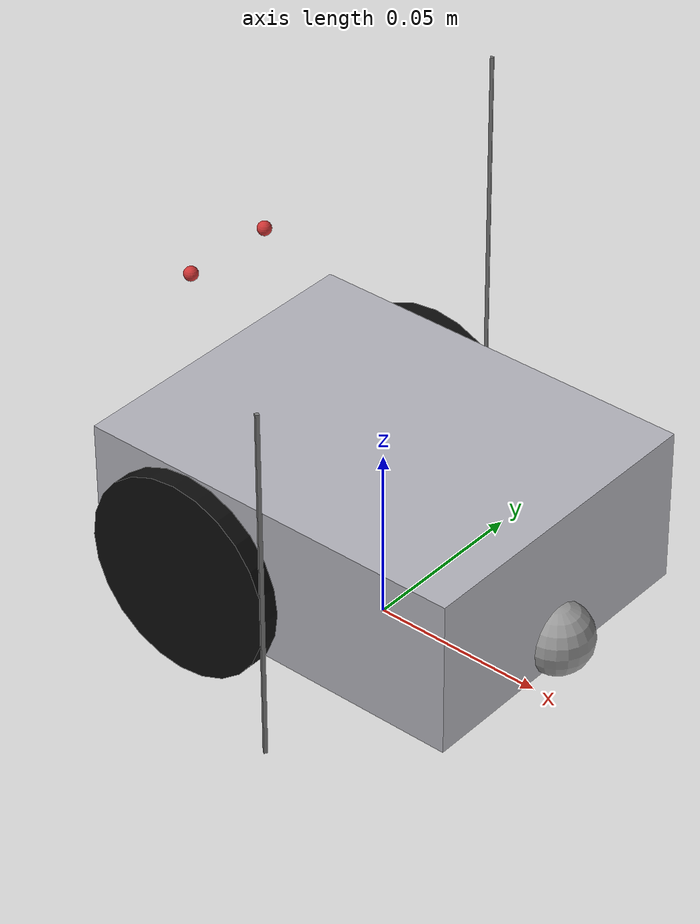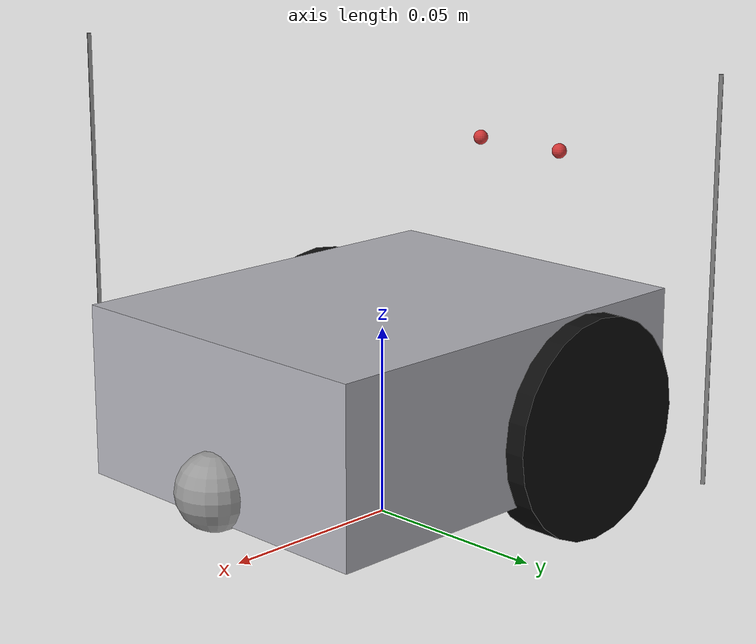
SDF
<?xml version="1.0"?>
<sdf version="1.6">
  <model name="breadboard_hobby_robot">

    <link name="base_link">
      <pose>0 0 0.036 0 0 0</pose>

      <inertial>
        <mass>0.350</mass>
        <inertia>
          <ixx>0.000393</ixx>  <!-- (1/12)*m*(y²+z²) -->
          <ixy>0</ixy>
          <ixz>0</ixz>
          <iyy>0.000519</iyy>
          <iyz>0</iyz>
          <izz>0.000744</izz>
        </inertia>
      </inertial>

      <collision name="chassis_collision">
        <geometry>
          <box>
            <size>0.115 0.092 0.045</size>
          </box>
        </geometry>
      </collision>

      <visual name="chassis_visual">
        <geometry>
          <box>
            <size>0.115 0.092 0.045</size>
          </box>
        </geometry>
        <material>
          <ambient>0.75 0.75 0.78 1</ambient>
          <diffuse>0.70 0.70 0.73 1</diffuse>
          <specular>0.4 0.4 0.4 1</specular>
        </material>
      </visual>

      <!-- Front caster sphere -->
      <collision name="caster_collision">
        <pose>0.057 0 -0.015 0 0 0</pose>
        <geometry>
          <sphere><radius>0.010</radius></sphere>
        </geometry>
        <surface>
          <friction>
            <ode><mu>0</mu><mu2>0</mu2></ode>
          </friction>
        </surface>
      </collision>
      <visual name="caster_visual">
        <pose>0.057 0 -0.015 0 0 0</pose>
        <geometry>
          <sphere><radius>0.010</radius></sphere>
        </geometry>
        <material>
          <ambient>0.6 0.6 0.6 1</ambient>
          <diffuse>0.6 0.6 0.6 1</diffuse>
        </material>
      </visual>

      <sensor name="rds" type="ray">
        <pose>0.028 -0.050 0.050 0 0 -1.170</pose>
        <ray>
          <scan><horizontal><samples>1</samples><min_angle>0</min_angle><max_angle>0</max_angle></horizontal></scan>
          <range><min>0.01</min><max>0.10</max><resolution>0.001</resolution></range>
        </ray>
        <always_on>1</always_on>
        <update_rate>10</update_rate>
      </sensor>

      <sensor name="lds" type="ray">
        <pose>-0.028 0.050 0.050 0 0 1.170</pose>
        <ray>
          <scan><horizontal><samples>1</samples><min_angle>0</min_angle><max_angle>0</max_angle></horizontal></scan>
          <range><min>0.01</min><max>0.10</max><resolution>0.001</resolution></range>
        </ray>
        <always_on>1</always_on>
        <update_rate>10</update_rate>
      </sensor>

      <sensor name="right_whisker" type="contact">
        <pose>0.030 -0.080 0.035 0 0 -0.534</pose>
        <contact>
          <collision>right_whisker_collision</collision>
        </contact>
        <always_on>1</always_on>
        <update_rate>20</update_rate>
      </sensor>

      <collision name="right_whisker_collision">
        <pose>0.030 -0.080 0.035 0 0 -0.534</pose>
        <geometry>
          <box><size>0.001 0.001 0.100</size></box>
        </geometry>
      </collision>
      <visual name="right_whisker_visual">
        <pose>0.030 -0.080 0.035 0 0 -0.534</pose>
        <geometry>
          <box><size>0.001 0.001 0.100</size></box>
        </geometry>
        <material>
          <ambient>0.5 0.5 0.5 1</ambient>
          <diffuse>0.5 0.5 0.5 1</diffuse>
        </material>
      </visual>

      <sensor name="left_whisker" type="contact">
        <pose>-0.030 0.080 0.035 0 0 0.534</pose>
        <contact>
          <collision>left_whisker_collision</collision>
        </contact>
        <always_on>1</always_on>
        <update_rate>20</update_rate>
      </sensor>

      <collision name="left_whisker_collision">
        <pose>-0.030 0.080 0.035 0 0 0.534</pose>
        <geometry>
          <box><size>0.001 0.001 0.100</size></box>
        </geometry>
      </collision>
      <visual name="left_whisker_visual">
        <pose>-0.030 0.080 0.035 0 0 0.534</pose>
        <geometry>
          <box><size>0.001 0.001 0.100</size></box>
        </geometry>
        <material>
          <ambient>0.5 0.5 0.5 1</ambient>
          <diffuse>0.5 0.5 0.5 1</diffuse>
        </material>
      </visual>

      <sensor name="rls" type="ray">
        <pose>-0.052 -0.021 0.052 0 0 0</pose>
        <ray>
          <scan><horizontal><samples>1</samples><min_angle>-0.087</min_angle><max_angle>0.087</max_angle></horizontal></scan>
          <range><min>0.01</min><max>2.0</max><resolution>0.01</resolution></range>
        </ray>
        <always_on>1</always_on>
        <update_rate>10</update_rate>
      </sensor>

      <sensor name="lls" type="ray">
        <pose>-0.052 0.021 0.052 0 0 0</pose>
        <ray>
          <scan><horizontal><samples>1</samples><min_angle>-0.087</min_angle><max_angle>0.087</max_angle></horizontal></scan>
          <range><min>0.01</min><max>2.0</max><resolution>0.01</resolution></range>
        </ray>
        <always_on>1</always_on>
        <update_rate>10</update_rate>
      </sensor>

      <!-- ─── LEDs (visual only in SDF; Gazebo light plugin optional) -->
      <visual name="right_led_visual">
        <pose>-0.052 -0.014 0.055 0 0 0</pose>
        <geometry><sphere><radius>0.002</radius></sphere></geometry>
        <material>
          <ambient>0.81 0.21 0.21 1</ambient>
          <diffuse>0.81 0.21 0.21 1</diffuse>
          <emissive>0.81 0.21 0.21 1</emissive>
        </material>
      </visual>

      <visual name="left_led_visual">
        <pose>-0.052 0.014 0.055 0 0 0</pose>
        <geometry><sphere><radius>0.002</radius></sphere></geometry>
        <material>
          <ambient>0.81 0.21 0.21 1</ambient>
          <diffuse>0.81 0.21 0.21 1</diffuse>
          <emissive>0.81 0.21 0.21 1</emissive>
        </material>
      </visual>
    </link>

    <link name="right_wheel">
      <pose>-0.025 -0.046 0.029 0 1.5708 1.5708</pose>
      <inertial>
        <mass>0.020</mass>
        <inertia>
          <ixx>0.0000085</ixx>
          <ixy>0</ixy>
          <ixz>0</ixz>
          <iyy>0.0000085</iyy>
          <iyz>0</iyz>
          <izz>0.0000085</izz>
        </inertia>
      </inertial>
      <collision name="collision">
        <geometry>
          <cylinder><radius>0.029</radius><length>0.011</length></cylinder>
        </geometry>
        <surface>
          <friction>
            <ode><mu>10</mu><mu2>10</mu2></ode>
          </friction>
        </surface>
      </collision>
      <visual name="visual">
        <geometry>
          <cylinder><radius>0.029</radius><length>0.011</length></cylinder>
        </geometry>
        <material>
          <ambient>0.05 0.05 0.05 1</ambient>
          <diffuse>0.05 0.05 0.05 1</diffuse>
        </material>
      </visual>
    </link>

    <link name="left_wheel">
      <pose>-0.025 0.046 0.029 0 1.5708 1.5708</pose>
      <inertial>
        <mass>0.020</mass>
        <inertia>
          <ixx>0.0000085</ixx>
          <ixy>0</ixy>
          <ixz>0</ixz>
          <iyy>0.0000085</iyy>
          <iyz>0</iyz>
          <izz>0.0000085</izz>
        </inertia>
      </inertial>
      <collision name="collision">
        <geometry>
          <cylinder><radius>0.029</radius><length>0.011</length></cylinder>
        </geometry>
        <surface>
          <friction>
            <ode><mu>10</mu><mu2>10</mu2></ode>
          </friction>
        </surface>
      </collision>
      <visual name="visual">
        <geometry>
          <cylinder><radius>0.029</radius><length>0.011</length></cylinder>
        </geometry>
        <material>
          <ambient>0.05 0.05 0.05 1</ambient>
          <diffuse>0.05 0.05 0.05 1</diffuse>
        </material>
      </visual>
    </link>

    <!-- ═══════════════════════════════════════════════════════════
         JOINTS
    ═══════════════════════════════════════════════════════════ -->
    <joint name="right_wheel_joint" type="revolute">
      <parent>base_link</parent>
      <child>right_wheel</child>
      <axis>
        <xyz>0 0 1</xyz>
        <limit><lower>-1e+16</lower><upper>1e+16</upper></limit>
        <dynamics><friction>0.05</friction><damping>0.05</damping></dynamics>
      </axis>
    </joint>

    <joint name="left_wheel_joint" type="revolute">
      <parent>base_link</parent>
      <child>left_wheel</child>
      <axis>
        <xyz>0 0 1</xyz>
        <limit><lower>-1e+16</lower><upper>1e+16</upper></limit>
        <dynamics><friction>0.05</friction><damping>0.05</damping></dynamics>
      </axis>
    </joint>

    <!-- ═══════════════════════════════════════════════════════════
         GAZEBO PLUGINS
    ═══════════════════════════════════════════════════════════ -->
    <plugin name="diff_drive" filename="libgazebo_ros_diff_drive.so">
      <ros>
        <namespace>/breadboard_hobby_robot</namespace>
        <remapping>cmd_vel:=cmd_vel</remapping>
        <remapping>odom:=odom</remapping>
      </ros>
      <left_joint>left_wheel_joint</left_joint>
      <right_joint>right_wheel_joint</right_joint>
      <wheel_separation>0.092</wheel_separation>
      <wheel_diameter>0.058</wheel_diameter>
      <max_wheel_torque>0.50</max_wheel_torque>
      <max_wheel_acceleration>2.0</max_wheel_acceleration>
      <publish_odom>true</publish_odom>
      <publish_odom_tf>true</publish_odom_tf>
      <publish_wheel_tf>false</publish_wheel_tf>
      <odometry_frame>odom</odometry_frame>
      <robot_base_frame>base_link</robot_base_frame>
    </plugin>

    <plugin name="joint_state_publisher" filename="libgazebo_ros_joint_state_publisher.so">
      <ros>
        <namespace>/breadboard_hobby_robot</namespace>
        <remapping>~/out:=joint_states</remapping>
      </ros>
      <update_rate>30</update_rate>
      <joint_name>right_wheel_joint</joint_name>
      <joint_name>left_wheel_joint</joint_name>
    </plugin>

  </model>
</sdf>
